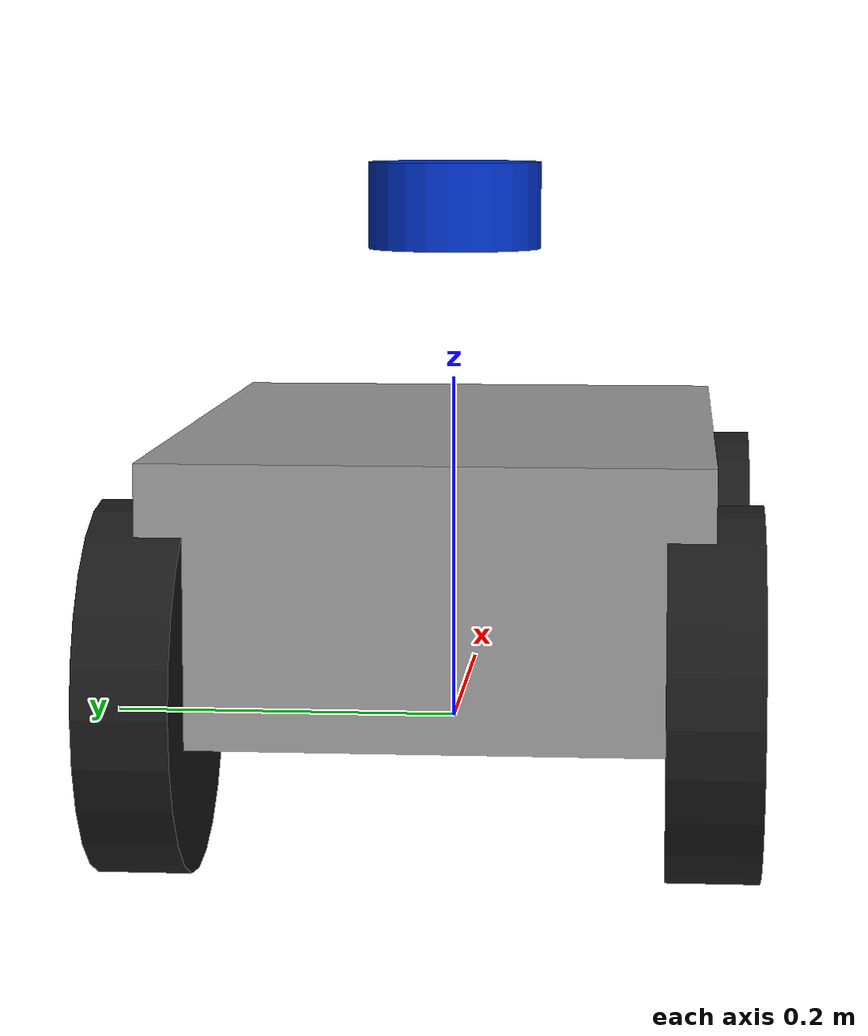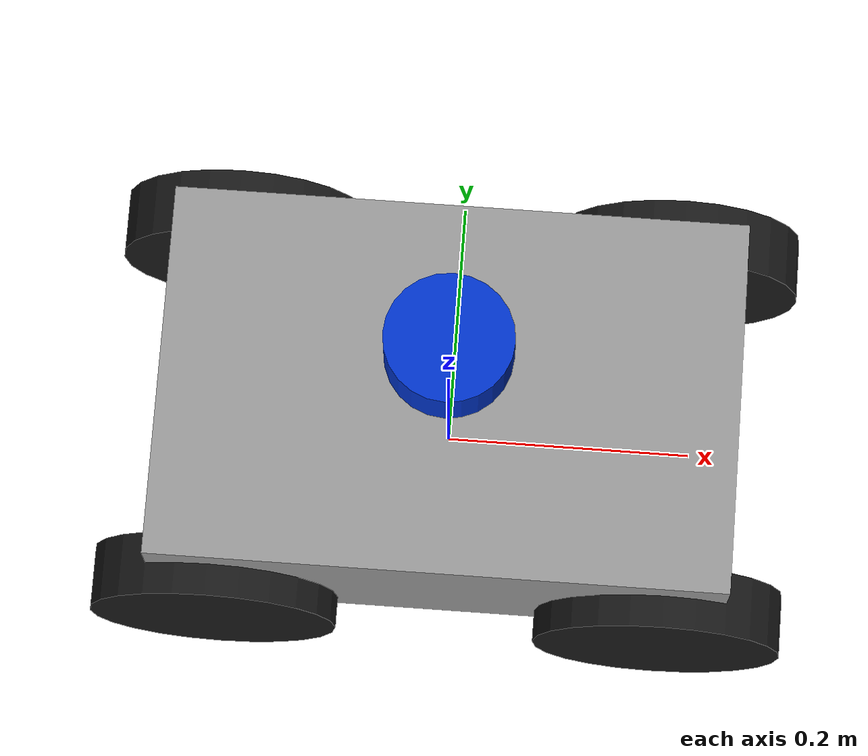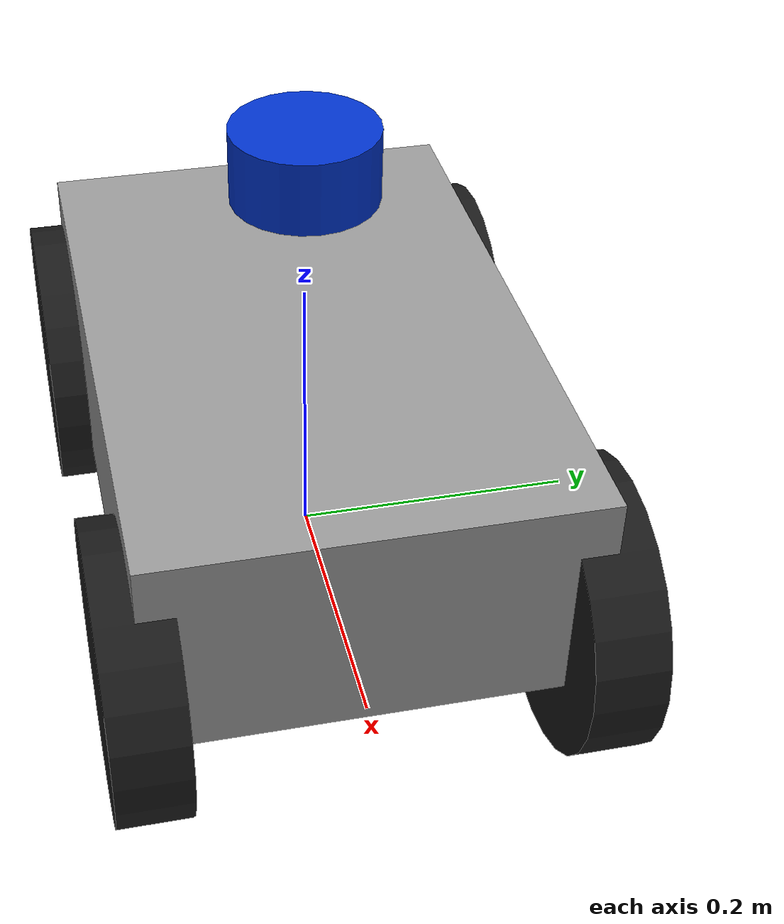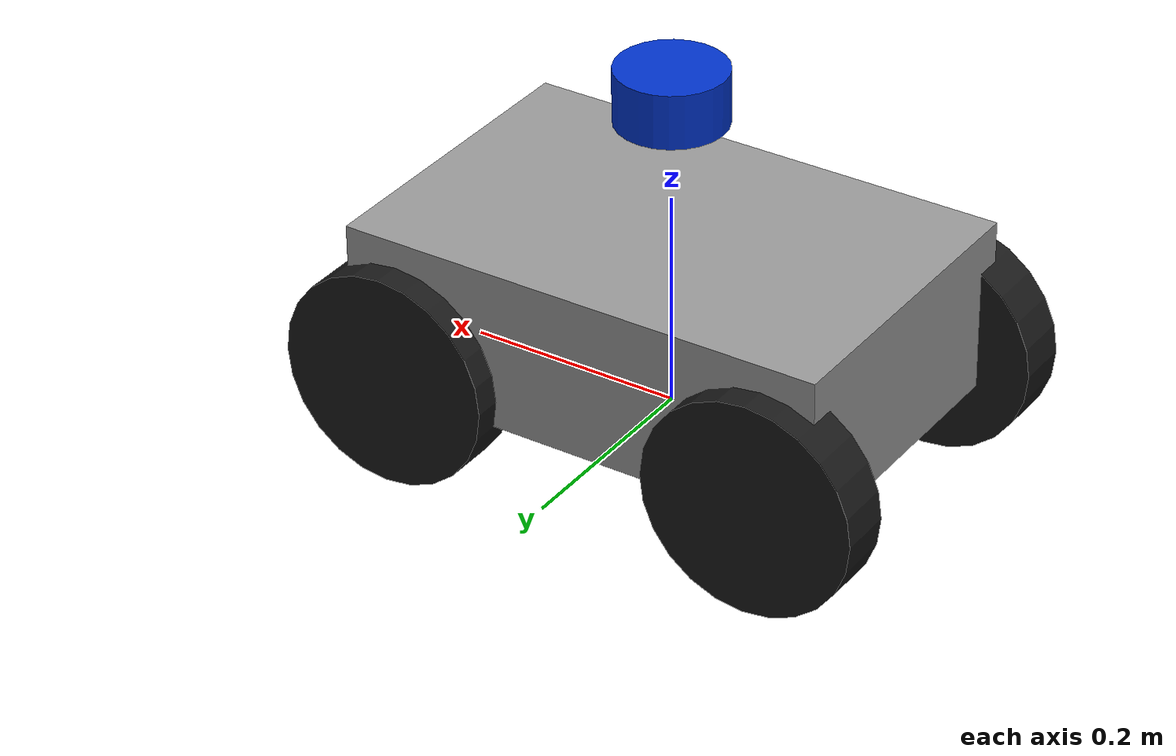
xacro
<?xml version="1.0"?>

<robot name="team12_robot" xmlns:xacro="http://www.ros.org/wiki/xacro">

<!-- ================= MATERIALS ================= -->

<material name="grey">
  <color rgba="0.6 0.6 0.6 1"/>
</material>

<material name="black">
  <color rgba="0.1 0.1 0.1 1"/>
</material>

<material name="blue">
  <color rgba="0 0.2 0.8 1"/>
</material>

<!-- ================= BASE LINK ================= -->

<link name="base_link"/>

<!-- ================= CHASSIS ================= -->

<link name="chassis_link">

  <inertial>
    <mass value="18.0"/>
    <origin xyz="0 0 0"/>
    <inertia ixx="1.2" iyy="1.2" izz="1.2"
             ixy="0" ixz="0" iyz="0"/>
  </inertial>

  <visual>
    <geometry>
      <box size="0.46 0.30 0.15"/>
    </geometry>
    <material name="grey"/>
  </visual>

  <collision>
    <geometry>
      <box size="0.46 0.30 0.15"/>
    </geometry>
  </collision>

</link>

<joint name="base_joint" type="fixed">
  <parent link="base_link"/>
  <child link="chassis_link"/>
  <origin xyz="0 0 0.1"/>
</joint>

<!-- ================= WHEEL MACRO ================= -->

<xacro:macro name="wheel" params="name x y">

<link name="${name}_link">

  <inertial>
    <mass value="1.5"/>
    <origin xyz="0 0 0"/>
    <inertia ixx="0.01" iyy="0.02" izz="0.01"
             ixy="0" ixz="0" iyz="0"/>
  </inertial>

  <visual>
    <origin rpy="1.5708 0 0"/>
    <geometry>
      <cylinder radius="0.10" length="0.05"/>
    </geometry>
    <material name="black"/>
  </visual>

  <collision>
    <origin rpy="1.5708 0 0"/>
    <geometry>
      <cylinder radius="0.10" length="0.05"/>
    </geometry>
  </collision>

</link>

<joint name="${name}_joint" type="continuous">
  <parent link="chassis_link"/>
  <child link="${name}_link"/>
  <origin xyz="${x} ${y} -0.05"/>
  <axis xyz="0 1 0"/>
</joint>

<!-- Wheel friction -->

<gazebo reference="${name}_link">
  <mu1>8</mu1>
  <mu2>8</mu2>
</gazebo>

</xacro:macro>

<!-- ================= WHEELS ================= -->

<xacro:wheel name="front_left_wheel"  x="0.18"  y="0.15"/>
<xacro:wheel name="front_right_wheel" x="0.18"  y="-0.15"/>

<xacro:wheel name="rear_left_wheel"   x="-0.18" y="0.15"/>
<xacro:wheel name="rear_right_wheel"  x="-0.18" y="-0.15"/>

<!-- ================= LIDAR ================= -->

<link name="lidar_link">

  <inertial>
    <mass value="0.4"/>
    <origin xyz="0 0 0"/>
    <inertia ixx="0.001" iyy="0.001" izz="0.001"
             ixy="0" ixz="0" iyz="0"/>
  </inertial>

  <visual>
    <geometry>
      <cylinder radius="0.05" length="0.05"/>
    </geometry>
    <material name="blue"/>
  </visual>

  <collision>
    <geometry>
      <cylinder radius="0.05" length="0.05"/>
    </geometry>
  </collision>

</link>

<joint name="lidar_joint" type="fixed">
  <parent link="chassis_link"/>
  <child link="lidar_link"/>
  <origin xyz="0 0 0.20"/>
</joint>

<!-- ================= DIFF DRIVE ================= -->

<gazebo>

<plugin name="diff_drive_controller" filename="libgazebo_ros_diff_drive.so">

  <update_rate>50</update_rate>

  <!-- LEFT SIDE WHEELS -->
  <left_joint>front_left_wheel_joint</left_joint>
  <left_joint>rear_left_wheel_joint</left_joint>

  <!-- RIGHT SIDE WHEELS -->
  <right_joint>front_right_wheel_joint</right_joint>
  <right_joint>rear_right_wheel_joint</right_joint>

  <wheel_separation>0.30</wheel_separation>
  <wheel_diameter>0.20</wheel_diameter>

  <command_topic>cmd_vel</command_topic>
  <odometry_topic>odom</odometry_topic>

  <publish_odom>true</publish_odom>
  <publish_odom_tf>true</publish_odom_tf>

  <robot_base_frame>base_link</robot_base_frame>

</plugin>

</gazebo>

<!-- ================= LIDAR SENSOR ================= -->

<gazebo reference="lidar_link">

<sensor type="ray" name="lidar_sensor">

<update_rate>10</update_rate>

<ray>

<scan>
<horizontal>
<samples>720</samples>
<resolution>1</resolution>
<min_angle>-3.14</min_angle>
<max_angle>3.14</max_angle>
</horizontal>
</scan>

<range>
<min>0.12</min>
<max>10.0</max>
</range>

</ray>

<plugin name="gazebo_ros_laser" filename="libgazebo_ros_laser.so">
<topicName>/scan</topicName>
<frameName>lidar_link</frameName>
<output_type>sensor_msgs/LaserScan</output_type>
</plugin>

</sensor>

</gazebo>

</robot>
